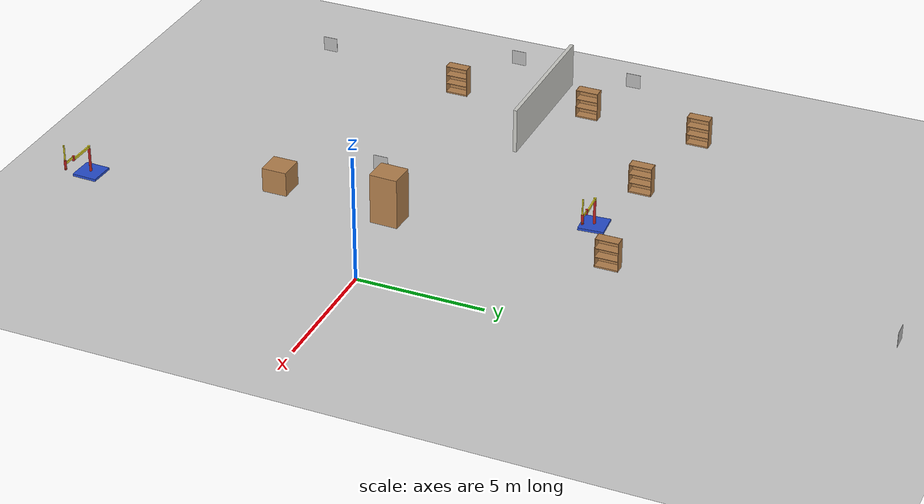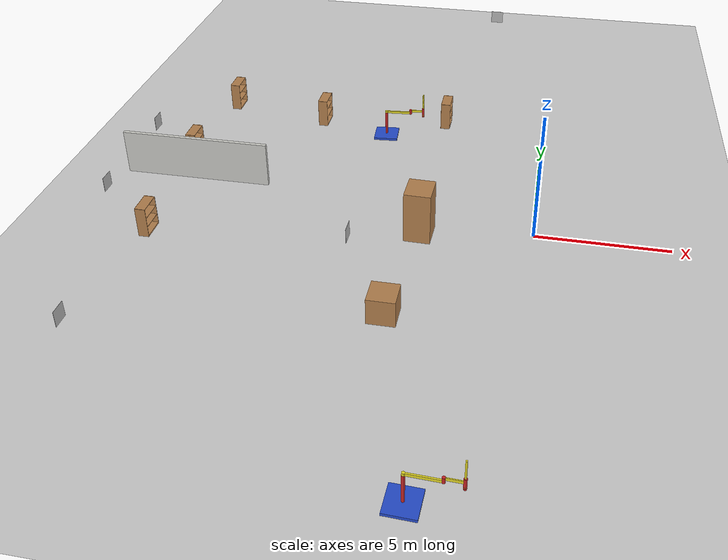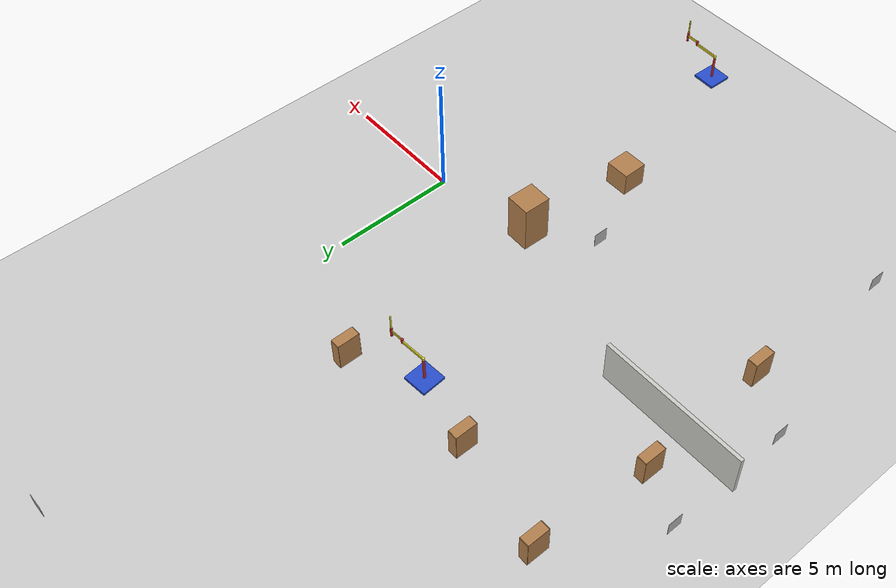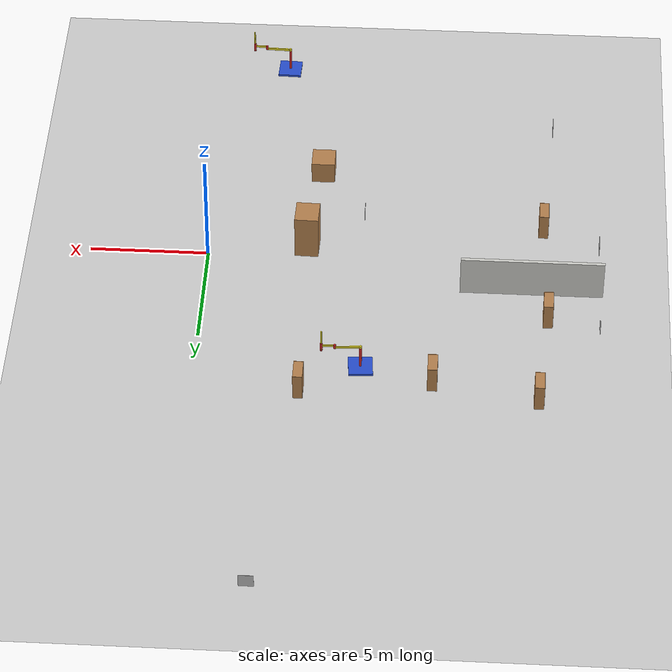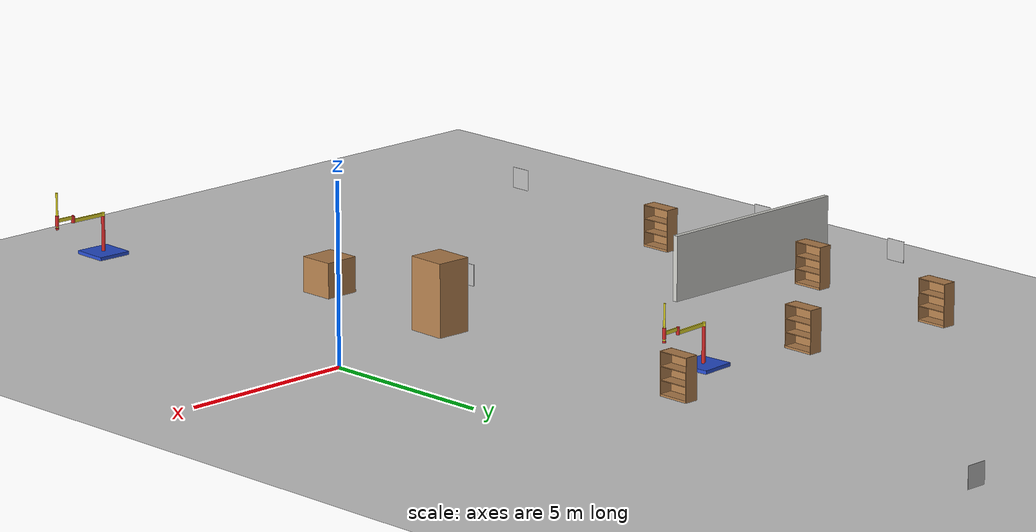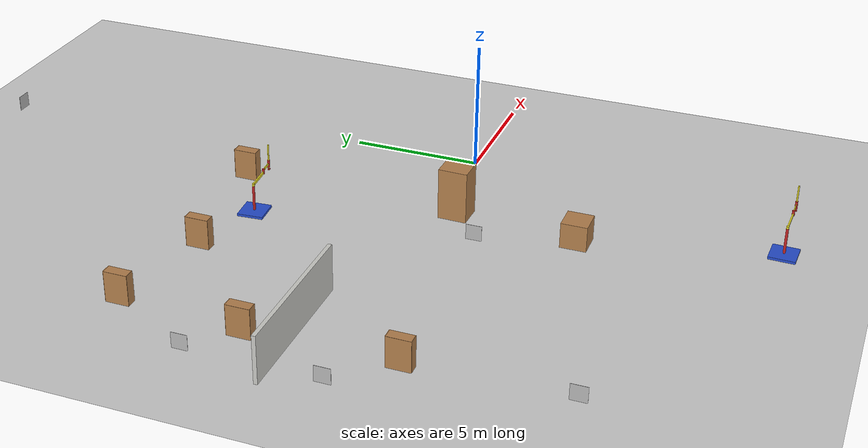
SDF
<sdf version="1.7">
 <world name="default">
  <model name="ground_plane">
   <static>1</static>
   <link name="link">
    <collision name="collision">
     <geometry><plane><normal>0 0 1</normal><size>25 25</size></plane></geometry>
     <surface><friction><ode><mu>100</mu><mu2>50</mu2></ode></friction></surface>
    </collision>
    <visual name="visual">
     <cast_shadows>0</cast_shadows>
     <geometry><plane><normal>0 0 1</normal><size>25 25</size></plane></geometry>
     <material>
      <script><uri>file://media/materials/scripts/gazebo.material</uri><name>Gazebo/Grey</name></script>
     </material>
    </visual>
   </link>
  </model>
  <model name="static_apriltag_1">
   <link name="link">
    <pose>0 0 0 0 1.57 0</pose>
    <inertial>
     <mass>0.39</mass>
     <inertia><ixx>0.00058</ixx><ixy>0</ixy><ixz>0</ixz><iyy>0.00058</iyy><iyz>0</iyz><izz>0.00019</izz></inertia>
    </inertial>
    <collision name="collision"><geometry><box><size>0.6 0.6 0.01</size></box></geometry></collision>
    <visual name="visual">
     <geometry><box><size>0.6 0.6 0.01</size></box></geometry>
     <material>
      <script>
       <uri>model://apriltag/materials/scripts</uri>
       <uri>model://apriltag/materials/textures</uri>
       <name>apriltag/Diffuse1</name>
      </script>
     </material>
    </visual>
    <gravity>0</gravity>
   </link>
   <pose>-3.10037 19.0635 0.801477 0.000796 0.000796 1.57</pose>
   <static>1</static>
   <pose>1.36256 0.459264 0 0 -0 0</pose>
  </model>
  <model name="static_apriltag_2">
   <link name="link">
    <pose>0 0 0 0 1.57 0</pose>
    <inertial>
     <mass>0.39</mass>
     <inertia><ixx>0.00058</ixx><ixy>0</ixy><ixz>0</ixz><iyy>0.00058</iyy><iyz>0</iyz><izz>0.00019</izz></inertia>
    </inertial>
    <collision name="collision"><geometry><box><size>0.6 0.6 0.01</size></box></geometry></collision>
    <visual name="visual">
     <geometry><box><size>0.6 0.6 0.01</size></box></geometry>
     <material>
      <script>
       <uri>model://apriltag/materials/scripts</uri>
       <uri>model://apriltag/materials/textures</uri>
       <name>apriltag/Diffuse2</name>
      </script>
     </material>
    </visual>
    <gravity>0</gravity>
   </link>
   <pose>-16.5929 4.42288 0.800934 -0.000796 0.000796 -1e-06</pose>
   <static>1</static>
   <pose>0.80811 0.829943 0 0 -0 0</pose>
  </model>
  <model name="static_apriltag_3">
   <link name="link">
    <pose>0 0 0 -1.57 1.57 -0</pose>
    <inertial>
     <mass>0.39</mass>
     <inertia><ixx>0.00058</ixx><ixy>0</ixy><ixz>0</ixz><iyy>0.00058</iyy><iyz>0</iyz><izz>0.00019</izz></inertia>
    </inertial>
    <collision name="collision"><geometry><box><size>0.6 0.6 0.01</size></box></geometry></collision>
    <visual name="visual">
     <geometry><box><size>0.6 0.6 0.01</size></box></geometry>
     <material>
      <script>
       <uri>model://apriltag/materials/scripts</uri>
       <uri>model://apriltag/materials/textures</uri>
       <name>apriltag/Diffuse3</name>
      </script>
     </material>
    </visual>
    <gravity>0</gravity>
   </link>
   <pose>-6.58894 -2.10577 0.802405 1e-06 0.001593 1.57319</pose>
   <static>1</static>
   <pose>3.65849 3.02317 0 0 -0 0</pose>
  </model>
  <model name="static_apriltag_6">
   <link name="link">
    <pose>0 0 0 -1.57 1.57 -0</pose>
    <inertial>
     <mass>0.39</mass>
     <inertia><ixx>0.00058</ixx><ixy>0</ixy><ixz>0</ixz><iyy>0.00058</iyy><iyz>0</iyz><izz>0.00019</izz></inertia>
    </inertial>
    <collision name="collision"><geometry><box><size>0.6 0.6 0.01</size></box></geometry></collision>
    <visual name="visual">
     <geometry><box><size>0.6 0.6 0.01</size></box></geometry>
     <material>
      <script>
       <uri>model://apriltag/materials/scripts</uri>
       <uri>model://apriltag/materials/textures</uri>
       <name>apriltag/Diffuse6</name>
      </script>
     </material>
    </visual>
    <gravity>0</gravity>
   </link>
   <pose>-14.5918 -8.15419 0.8 0 0 -1.57</pose>
   <static>1</static>
   <pose>3.43144 4.34187 0 0 -0 0</pose>
  </model>
  <model name="static_apriltag_7">
   <link name="link">
    <pose>0 0 0 0 1.57 0</pose>
    <inertial>
     <mass>0.39</mass>
     <inertia><ixx>0.00058</ixx><ixy>0</ixy><ixz>0</ixz><iyy>0.00058</iyy><iyz>0</iyz><izz>0.00019</izz></inertia>
    </inertial>
    <collision name="collision"><geometry><box><size>0.6 0.6 0.01</size></box></geometry></collision>
    <visual name="visual">
     <geometry><box><size>0.6 0.6 0.01</size></box></geometry>
     <material>
      <script>
       <uri>model://apriltag/materials/scripts</uri>
       <uri>model://apriltag/materials/textures</uri>
       <name>apriltag/Diffuse7</name>
      </script>
     </material>
    </visual>
    <gravity>0</gravity>
   </link>
   <pose>-16.5926 -0.548605 0.801141 -0.000796 0.000796 -1e-06</pose>
   <static>1</static>
   <pose>3.12393 4.47604 0 0 -0 0</pose>
  </model>
  <model name="bookshelf_clone">
   <static>1</static>
   <link name="link">
    <inertial><mass>1</mass></inertial>
    <collision name="back">
     <pose>0 0.005 0.6 0 -0 0</pose>
     <geometry><box><size>0.9 0.01 1.2</size></box></geometry>
    </collision>
    <visual name="visual1">
     <pose>0 0.005 0.6 0 -0 0</pose>
     <geometry><box><size>0.9 0.01 1.2</size></box></geometry>
     <material>
      <script><uri>file://media/materials/scripts/gazebo.material</uri><name>Gazebo/Wood</name></script>
     </material>
    </visual>
    <collision name="left_side">
     <pose>0.45 -0.195 0.6 0 -0 0</pose>
     <geometry><box><size>0.02 0.4 1.2</size></box></geometry>
    </collision>
    <visual name="visual2">
     <pose>0.45 -0.195 0.6 0 -0 0</pose>
     <geometry><box><size>0.02 0.4 1.2</size></box></geometry>
     <material>
      <script><uri>file://media/materials/scripts/gazebo.material</uri><name>Gazebo/Wood</name></script>
     </material>
    </visual>
    <collision name="right_side">
     <pose>-0.45 -0.195 0.6 0 -0 0</pose>
     <geometry><box><size>0.02 0.4 1.2</size></box></geometry>
    </collision>
    <visual name="visual3">
     <pose>-0.45 -0.195 0.6 0 -0 0</pose>
     <geometry><box><size>0.02 0.4 1.2</size></box></geometry>
     <material>
      <script><uri>file://media/materials/scripts/gazebo.material</uri><name>Gazebo/Wood</name></script>
     </material>
    </visual>
    <collision name="bottom">
     <pose>0 -0.195 0.03 0 -0 0</pose>
     <geometry><box><size>0.88 0.4 0.06</size></box></geometry>
    </collision>
    <visual name="visual4">
     <pose>0 -0.195 0.03 0 -0 0</pose>
     <geometry><box><size>0.88 0.4 0.06</size></box></geometry>
     <material>
      <script><uri>file://media/materials/scripts/gazebo.material</uri><name>Gazebo/Wood</name></script>
     </material>
    </visual>
    <collision name="top">
     <pose>0 -0.195 1.19 0 -0 0</pose>
     <geometry><box><size>0.88 0.4 0.02</size></box></geometry>
    </collision>
    <visual name="visual5">
     <pose>0 -0.195 1.19 0 -0 0</pose>
     <geometry><box><size>0.88 0.4 0.02</size></box></geometry>
     <material>
      <script><uri>file://media/materials/scripts/gazebo.material</uri><name>Gazebo/Wood</name></script>
     </material>
    </visual>
    <collision name="low_shelf">
     <pose>0 -0.195 0.43 0 -0 0</pose>
     <geometry><box><size>0.88 0.4 0.02</size></box></geometry>
    </collision>
    <visual name="visual6">
     <pose>0 -0.195 0.43 0 -0 0</pose>
     <geometry><box><size>0.88 0.4 0.02</size></box></geometry>
     <material>
      <script><uri>file://media/materials/scripts/gazebo.material</uri><name>Gazebo/Wood</name></script>
     </material>
    </visual>
    <collision name="high_shelf">
     <pose>0 -0.195 0.8 0 -0 0</pose>
     <geometry><box><size>0.88 0.4 0.02</size></box></geometry>
    </collision>
    <visual name="visual7">
     <pose>0 -0.195 0.8 0 -0 0</pose>
     <geometry><box><size>0.88 0.4 0.02</size></box></geometry>
     <material>
      <script><uri>file://media/materials/scripts/gazebo.material</uri><name>Gazebo/Wood</name></script>
     </material>
    </visual>
   </link>
   <pose>-14.4391 -2.23541 0 0 -0 1.57</pose>
  </model>
  <model name="simple_arm_clone">
   <link name="arm_base">
    <inertial>
     <pose>0 0 0.00099 0 -0 0</pose>
     <inertia><ixx>1.11</ixx><ixy>0</ixy><ixz>0</ixz><iyy>100.11</iyy><iyz>0</iyz><izz>1.01</izz></inertia>
     <mass>101</mass>
    </inertial>
    <collision name="arm_base_geom">
     <pose>0 0 0.05 0 -0 0</pose>
     <geometry><box><size>1 1 0.1</size></box></geometry>
    </collision>
    <visual name="arm_base_geom_visual">
     <pose>0 0 0.05 0 -0 0</pose>
     <geometry><box><size>1 1 0.1</size></box></geometry>
     <material>
      <script><uri>file://media/materials/scripts/gazebo.material</uri><name>Gazebo/Blue</name></script>
     </material>
    </visual>
    <collision name="arm_base_geom_arm_trunk">
     <pose>0 0 0.6 0 -0 0</pose>
     <geometry><cylinder><radius>0.05</radius><length>1</length></cylinder></geometry>
    </collision>
    <visual name="arm_base_geom_arm_trunk_visual">
     <pose>0 0 0.6 0 -0 0</pose>
     <geometry><cylinder><radius>0.05</radius><length>1</length></cylinder></geometry>
     <material>
      <script><uri>file://media/materials/scripts/gazebo.material</uri><name>Gazebo/Red</name></script>
     </material>
    </visual>
   </link>
   <link name="arm_shoulder_pan">
    <pose>0 0 1.1 0 -0 0</pose>
    <inertial>
     <pose>0.045455 0 0 0 -0 0</pose>
     <inertia><ixx>0.011</ixx><ixy>0</ixy><ixz>0</ixz><iyy>0.0225</iyy><iyz>0</iyz><izz>0.0135</izz></inertia>
     <mass>1.1</mass>
    </inertial>
    <collision name="arm_shoulder_pan_geom">
     <pose>0 0 0.05 0 -0 0</pose>
     <geometry><cylinder><radius>0.05</radius><length>0.1</length></cylinder></geometry>
    </collision>
    <visual name="arm_shoulder_pan_geom_visual">
     <pose>0 0 0.05 0 -0 0</pose>
     <geometry><cylinder><radius>0.05</radius><length>0.1</length></cylinder></geometry>
     <material>
      <script><uri>file://media/materials/scripts/gazebo.material</uri><name>Gazebo/Yellow</name></script>
     </material>
    </visual>
    <collision name="arm_shoulder_pan_geom_arm_shoulder">
     <pose>0.55 0 0.05 0 -0 0</pose>
     <geometry><box><size>1 0.05 0.1</size></box></geometry>
    </collision>
    <visual name="arm_shoulder_pan_geom_arm_shoulder_visual">
     <pose>0.55 0 0.05 0 -0 0</pose>
     <geometry><box><size>1 0.05 0.1</size></box></geometry>
     <material>
      <script><uri>file://media/materials/scripts/gazebo.material</uri><name>Gazebo/Yellow</name></script>
     </material>
    </visual>
   </link>
   <link name="arm_elbow_pan">
    <pose>1.05 0 1.1 0 -0 0</pose>
    <inertial>
     <pose>0.0875 0 0.083333 0 -0 0</pose>
     <inertia>
      <ixx>0.031</ixx>
      <ixy>0</ixy>
      <ixz>0.005</ixz>
      <iyy>0.07275</iyy>
      <iyz>0</iyz>
      <izz>0.04475</izz>
     </inertia>
     <mass>1.2</mass>
    </inertial>
    <collision name="arm_elbow_pan_geom">
     <pose>0 0 0.1 0 -0 0</pose>
     <geometry><cylinder><radius>0.05</radius><length>0.2</length></cylinder></geometry>
    </collision>
    <visual name="arm_elbow_pan_geom_visual">
     <pose>0 0 0.1 0 -0 0</pose>
     <geometry><cylinder><radius>0.05</radius><length>0.2</length></cylinder></geometry>
     <material>
      <script><uri>file://media/materials/scripts/gazebo.material</uri><name>Gazebo/Red</name></script>
     </material>
    </visual>
    <collision name="arm_elbow_pan_geom_arm_elbow">
     <pose>0.3 0 0.15 0 -0 0</pose>
     <geometry><box><size>0.5 0.03 0.1</size></box></geometry>
    </collision>
    <visual name="arm_elbow_pan_geom_arm_elbow_visual">
     <pose>0.3 0 0.15 0 -0 0</pose>
     <geometry><box><size>0.5 0.03 0.1</size></box></geometry>
     <material>
      <script><uri>file://media/materials/scripts/gazebo.material</uri><name>Gazebo/Yellow</name></script>
     </material>
    </visual>
    <collision name="arm_elbow_pan_geom_arm_wrist">
     <pose>0.55 0 0.15 0 -0 0</pose>
     <geometry><cylinder><radius>0.05</radius><length>0.3</length></cylinder></geometry>
    </collision>
    <visual name="arm_elbow_pan_geom_arm_wrist_visual">
     <pose>0.55 0 0.15 0 -0 0</pose>
     <geometry><cylinder><radius>0.05</radius><length>0.3</length></cylinder></geometry>
     <material>
      <script><uri>file://media/materials/scripts/gazebo.material</uri><name>Gazebo/Red</name></script>
     </material>
    </visual>
   </link>
   <link name="arm_wrist_lift">
    <pose>1.6 0 1.05 0 -0 0</pose>
    <inertial>
     <inertia><ixx>0.01</ixx><ixy>0</ixy><ixz>0</ixz><iyy>0.01</iyy><iyz>0</iyz><izz>0.001</izz></inertia>
     <mass>0.1</mass>
    </inertial>
    <collision name="arm_wrist_lift_geom">
     <pose>0 0 0.5 0 -0 0</pose>
     <geometry><cylinder><radius>0.03</radius><length>1</length></cylinder></geometry>
    </collision>
    <visual name="arm_wrist_lift_geom_visual">
     <pose>0 0 0.5 0 -0 0</pose>
     <geometry><cylinder><radius>0.03</radius><length>1</length></cylinder></geometry>
     <material>
      <script><uri>file://media/materials/scripts/gazebo.material</uri><name>Gazebo/Yellow</name></script>
     </material>
    </visual>
   </link>
   <link name="arm_wrist_roll">
    <pose>1.6 0 1 0 -0 0</pose>
    <inertial>
     <inertia><ixx>0.01</ixx><ixy>0</ixy><ixz>0</ixz><iyy>0.01</iyy><iyz>0</iyz><izz>0.001</izz></inertia>
     <mass>0.1</mass>
    </inertial>
    <collision name="arm_wrist_roll_geom">
     <pose>0 0 0.025 0 -0 0</pose>
     <geometry><cylinder><radius>0.05</radius><length>0.05</length></cylinder></geometry>
    </collision>
    <visual name="arm_wrist_roll_geom_visual">
     <pose>0 0 0.025 0 -0 0</pose>
     <geometry><cylinder><radius>0.05</radius><length>0.05</length></cylinder></geometry>
     <material>
      <script><uri>file://media/materials/scripts/gazebo.material</uri><name>Gazebo/Red</name></script>
     </material>
    </visual>
   </link>
   <joint name="arm_shoulder_pan_joint" type="revolute">
    <parent>arm_base</parent>
    <child>arm_shoulder_pan</child>
    <axis>
     <dynamics>
      <damping>1</damping>
      <friction>0</friction>
      <spring_reference>0</spring_reference>
      <spring_stiffness>0</spring_stiffness>
     </dynamics>
     <xyz expressed_in="__model__">0 0 1</xyz>
     <limit><lower>-1e+16</lower><upper>1e+16</upper></limit>
    </axis>
   </joint>
   <joint name="arm_elbow_pan_joint" type="revolute">
    <parent>arm_shoulder_pan</parent>
    <child>arm_elbow_pan</child>
    <axis>
     <dynamics>
      <damping>1</damping>
      <friction>0</friction>
      <spring_reference>0</spring_reference>
      <spring_stiffness>0</spring_stiffness>
     </dynamics>
     <xyz expressed_in="__model__">0 0 1</xyz>
     <limit><lower>-1e+16</lower><upper>1e+16</upper></limit>
    </axis>
   </joint>
   <joint name="arm_wrist_lift_joint" type="prismatic">
    <parent>arm_elbow_pan</parent>
    <child>arm_wrist_lift</child>
    <axis>
     <dynamics>
      <damping>1</damping>
      <friction>0</friction>
      <spring_reference>0</spring_reference>
      <spring_stiffness>0</spring_stiffness>
     </dynamics>
     <limit><lower>-0.8</lower><upper>0.1</upper></limit>
     <xyz expressed_in="__model__">0 0 1</xyz>
    </axis>
   </joint>
   <joint name="arm_wrist_roll_joint" type="revolute">
    <parent>arm_wrist_lift</parent>
    <child>arm_wrist_roll</child>
    <axis>
     <dynamics>
      <damping>1</damping>
      <friction>0</friction>
      <spring_reference>0</spring_reference>
      <spring_stiffness>0</spring_stiffness>
     </dynamics>
     <limit><lower>-2.99999</lower><upper>2.99999</upper></limit>
     <xyz expressed_in="__model__">0 0 1</xyz>
    </axis>
   </joint>
   <pose>-6.82307 6.51407 -5.4e-05 -0.00011 -1e-06 0.075516</pose>
  </model>
  <model name="simple_arm_clone_0">
   <link name="arm_base">
    <inertial>
     <pose>0 0 0.00099 0 -0 0</pose>
     <inertia><ixx>1.11</ixx><ixy>0</ixy><ixz>0</ixz><iyy>100.11</iyy><iyz>0</iyz><izz>1.01</izz></inertia>
     <mass>101</mass>
    </inertial>
    <collision name="arm_base_geom">
     <pose>0 0 0.05 0 -0 0</pose>
     <geometry><box><size>1 1 0.1</size></box></geometry>
    </collision>
    <visual name="arm_base_geom_visual">
     <pose>0 0 0.05 0 -0 0</pose>
     <geometry><box><size>1 1 0.1</size></box></geometry>
     <material>
      <script><uri>file://media/materials/scripts/gazebo.material</uri><name>Gazebo/Blue</name></script>
     </material>
    </visual>
    <collision name="arm_base_geom_arm_trunk">
     <pose>0 0 0.6 0 -0 0</pose>
     <geometry><cylinder><radius>0.05</radius><length>1</length></cylinder></geometry>
    </collision>
    <visual name="arm_base_geom_arm_trunk_visual">
     <pose>0 0 0.6 0 -0 0</pose>
     <geometry><cylinder><radius>0.05</radius><length>1</length></cylinder></geometry>
     <material>
      <script><uri>file://media/materials/scripts/gazebo.material</uri><name>Gazebo/Red</name></script>
     </material>
    </visual>
   </link>
   <link name="arm_shoulder_pan">
    <pose>0 0 1.1 0 -0 0</pose>
    <inertial>
     <pose>0.045455 0 0 0 -0 0</pose>
     <inertia><ixx>0.011</ixx><ixy>0</ixy><ixz>0</ixz><iyy>0.0225</iyy><iyz>0</iyz><izz>0.0135</izz></inertia>
     <mass>1.1</mass>
    </inertial>
    <collision name="arm_shoulder_pan_geom">
     <pose>0 0 0.05 0 -0 0</pose>
     <geometry><cylinder><radius>0.05</radius><length>0.1</length></cylinder></geometry>
    </collision>
    <visual name="arm_shoulder_pan_geom_visual">
     <pose>0 0 0.05 0 -0 0</pose>
     <geometry><cylinder><radius>0.05</radius><length>0.1</length></cylinder></geometry>
     <material>
      <script><uri>file://media/materials/scripts/gazebo.material</uri><name>Gazebo/Yellow</name></script>
     </material>
    </visual>
    <collision name="arm_shoulder_pan_geom_arm_shoulder">
     <pose>0.55 0 0.05 0 -0 0</pose>
     <geometry><box><size>1 0.05 0.1</size></box></geometry>
    </collision>
    <visual name="arm_shoulder_pan_geom_arm_shoulder_visual">
     <pose>0.55 0 0.05 0 -0 0</pose>
     <geometry><box><size>1 0.05 0.1</size></box></geometry>
     <material>
      <script><uri>file://media/materials/scripts/gazebo.material</uri><name>Gazebo/Yellow</name></script>
     </material>
    </visual>
   </link>
   <link name="arm_elbow_pan">
    <pose>1.05 0 1.1 0 -0 0</pose>
    <inertial>
     <pose>0.0875 0 0.083333 0 -0 0</pose>
     <inertia>
      <ixx>0.031</ixx>
      <ixy>0</ixy>
      <ixz>0.005</ixz>
      <iyy>0.07275</iyy>
      <iyz>0</iyz>
      <izz>0.04475</izz>
     </inertia>
     <mass>1.2</mass>
    </inertial>
    <collision name="arm_elbow_pan_geom">
     <pose>0 0 0.1 0 -0 0</pose>
     <geometry><cylinder><radius>0.05</radius><length>0.2</length></cylinder></geometry>
    </collision>
    <visual name="arm_elbow_pan_geom_visual">
     <pose>0 0 0.1 0 -0 0</pose>
     <geometry><cylinder><radius>0.05</radius><length>0.2</length></cylinder></geometry>
     <material>
      <script><uri>file://media/materials/scripts/gazebo.material</uri><name>Gazebo/Red</name></script>
     </material>
    </visual>
    <collision name="arm_elbow_pan_geom_arm_elbow">
     <pose>0.3 0 0.15 0 -0 0</pose>
     <geometry><box><size>0.5 0.03 0.1</size></box></geometry>
    </collision>
    <visual name="arm_elbow_pan_geom_arm_elbow_visual">
     <pose>0.3 0 0.15 0 -0 0</pose>
     <geometry><box><size>0.5 0.03 0.1</size></box></geometry>
     <material>
      <script><uri>file://media/materials/scripts/gazebo.material</uri><name>Gazebo/Yellow</name></script>
     </material>
    </visual>
    <collision name="arm_elbow_pan_geom_arm_wrist">
     <pose>0.55 0 0.15 0 -0 0</pose>
     <geometry><cylinder><radius>0.05</radius><length>0.3</length></cylinder></geometry>
    </collision>
    <visual name="arm_elbow_pan_geom_arm_wrist_visual">
     <pose>0.55 0 0.15 0 -0 0</pose>
     <geometry><cylinder><radius>0.05</radius><length>0.3</length></cylinder></geometry>
     <material>
      <script><uri>file://media/materials/scripts/gazebo.material</uri><name>Gazebo/Red</name></script>
     </material>
    </visual>
   </link>
   <link name="arm_wrist_lift">
    <pose>1.6 0 1.05 0 -0 0</pose>
    <inertial>
     <inertia><ixx>0.01</ixx><ixy>0</ixy><ixz>0</ixz><iyy>0.01</iyy><iyz>0</iyz><izz>0.001</izz></inertia>
     <mass>0.1</mass>
    </inertial>
    <collision name="arm_wrist_lift_geom">
     <pose>0 0 0.5 0 -0 0</pose>
     <geometry><cylinder><radius>0.03</radius><length>1</length></cylinder></geometry>
    </collision>
    <visual name="arm_wrist_lift_geom_visual">
     <pose>0 0 0.5 0 -0 0</pose>
     <geometry><cylinder><radius>0.03</radius><length>1</length></cylinder></geometry>
     <material>
      <script><uri>file://media/materials/scripts/gazebo.material</uri><name>Gazebo/Yellow</name></script>
     </material>
    </visual>
   </link>
   <link name="arm_wrist_roll">
    <pose>1.6 0 1 0 -0 0</pose>
    <inertial>
     <inertia><ixx>0.01</ixx><ixy>0</ixy><ixz>0</ixz><iyy>0.01</iyy><iyz>0</iyz><izz>0.001</izz></inertia>
     <mass>0.1</mass>
    </inertial>
    <collision name="arm_wrist_roll_geom">
     <pose>0 0 0.025 0 -0 0</pose>
     <geometry><cylinder><radius>0.05</radius><length>0.05</length></cylinder></geometry>
    </collision>
    <visual name="arm_wrist_roll_geom_visual">
     <pose>0 0 0.025 0 -0 0</pose>
     <geometry><cylinder><radius>0.05</radius><length>0.05</length></cylinder></geometry>
     <material>
      <script><uri>file://media/materials/scripts/gazebo.material</uri><name>Gazebo/Red</name></script>
     </material>
    </visual>
   </link>
   <joint name="arm_shoulder_pan_joint" type="revolute">
    <parent>arm_base</parent>
    <child>arm_shoulder_pan</child>
    <axis>
     <dynamics>
      <damping>1</damping>
      <friction>0</friction>
      <spring_reference>0</spring_reference>
      <spring_stiffness>0</spring_stiffness>
     </dynamics>
     <xyz expressed_in="__model__">0 0 1</xyz>
     <limit><lower>-1e+16</lower><upper>1e+16</upper></limit>
    </axis>
   </joint>
   <joint name="arm_elbow_pan_joint" type="revolute">
    <parent>arm_shoulder_pan</parent>
    <child>arm_elbow_pan</child>
    <axis>
     <dynamics>
      <damping>1</damping>
      <friction>0</friction>
      <spring_reference>0</spring_reference>
      <spring_stiffness>0</spring_stiffness>
     </dynamics>
     <xyz expressed_in="__model__">0 0 1</xyz>
     <limit><lower>-1e+16</lower><upper>1e+16</upper></limit>
    </axis>
   </joint>
   <joint name="arm_wrist_lift_joint" type="prismatic">
    <parent>arm_elbow_pan</parent>
    <child>arm_wrist_lift</child>
    <axis>
     <dynamics>
      <damping>1</damping>
      <friction>0</friction>
      <spring_reference>0</spring_reference>
      <spring_stiffness>0</spring_stiffness>
     </dynamics>
     <limit><lower>-0.8</lower><upper>0.1</upper></limit>
     <xyz expressed_in="__model__">0 0 1</xyz>
    </axis>
   </joint>
   <joint name="arm_wrist_roll_joint" type="revolute">
    <parent>arm_wrist_lift</parent>
    <child>arm_wrist_roll</child>
    <axis>
     <dynamics>
      <damping>1</damping>
      <friction>0</friction>
      <spring_reference>0</spring_reference>
      <spring_stiffness>0</spring_stiffness>
     </dynamics>
     <limit><lower>-2.99999</lower><upper>2.99999</upper></limit>
     <xyz expressed_in="__model__">0 0 1</xyz>
    </axis>
   </joint>
   <pose>-2.69365 -12.5723 -5.5e-05 0.000113 -2e-06 -0.036275</pose>
  </model>
  <model name="0810_MAP2_elment2">
   <link name="Wall_0">
    <inertial>
     <mass>1</mass>
     <inertia><ixx>1</ixx><ixy>0</ixy><ixz>0</ixz><iyy>1</iyy><iyz>0</iyz><izz>1</izz></inertia>
    </inertial>
    <visual name="Wall_0_Visual_3">
     <pose>-1 0 0.9 0 -0 0</pose>
     <geometry><box><size>6 0.15 2</size></box></geometry>
     <material>
      <script><uri>file://media/materials/scripts/gazebo.material</uri><name>Gazebo/CeilingTiled</name></script>
      <ambient>1 0.765 0.306 1</ambient>
      <shader type="pixel"><normal_map>__default__</normal_map></shader>
      <diffuse>1 1 1 1</diffuse>
      <specular>0 0 0 1</specular>
      <emissive>0 0 0 1</emissive>
     </material>
     <meta><layer>0</layer></meta>
    </visual>
    <collision name="Wall_0_Collision_3">
     <pose>-1 0 0.9 0 -0 0</pose>
     <geometry><box><size>6 0.15 2</size></box></geometry>
     <surface>
      <friction>
       <ode><mu>1</mu><mu2>1</mu2><fdir1>0 0 0</fdir1><slip1>0</slip1><slip2>0</slip2></ode>
       <torsional>
        <coefficient>1</coefficient>
        <patch_radius>0</patch_radius>
        <surface_radius>0</surface_radius>
        <use_patch_radius>1</use_patch_radius>
        <ode><slip>0</slip></ode>
       </torsional>
      </friction>
      <bounce><restitution_coefficient>0</restitution_coefficient><threshold>1e+06</threshold></bounce>
      <contact>
       <collide_without_contact>0</collide_without_contact>
       <collide_without_contact_bitmask>1</collide_without_contact_bitmask>
       <collide_bitmask>1</collide_bitmask>
       <ode>
        <soft_cfm>0</soft_cfm>
        <soft_erp>0.2</soft_erp>
        <kp>1e+13</kp>
        <kd>1</kd>
        <max_vel>0.01</max_vel>
        <min_depth>0</min_depth>
       </ode>
       <bullet>
        <split_impulse>1</split_impulse>
        <split_impulse_penetration_threshold>-0.01</split_impulse_penetration_threshold>
        <soft_cfm>0</soft_cfm>
        <soft_erp>0.2</soft_erp>
        <kp>1e+13</kp>
        <kd>1</kd>
       </bullet>
      </contact>
     </surface>
    </collision>
   </link>
   <static>1</static>
   <pose>-12.7621 1.68189 -0.102799 0 -0 0</pose>
  </model>
  <model name="bookshelf_clone_0_clone_clone">
   <static>1</static>
   <link name="link">
    <inertial><mass>1</mass></inertial>
    <collision name="back">
     <pose>0 0.005 0.6 0 -0 0</pose>
     <geometry><box><size>0.9 0.01 1.2</size></box></geometry>
    </collision>
    <visual name="visual1">
     <pose>0 0.005 0.6 0 -0 0</pose>
     <geometry><box><size>0.9 0.01 1.2</size></box></geometry>
     <material>
      <script><uri>file://media/materials/scripts/gazebo.material</uri><name>Gazebo/Wood</name></script>
     </material>
    </visual>
    <collision name="left_side">
     <pose>0.45 -0.195 0.6 0 -0 0</pose>
     <geometry><box><size>0.02 0.4 1.2</size></box></geometry>
    </collision>
    <visual name="visual2">
     <pose>0.45 -0.195 0.6 0 -0 0</pose>
     <geometry><box><size>0.02 0.4 1.2</size></box></geometry>
     <material>
      <script><uri>file://media/materials/scripts/gazebo.material</uri><name>Gazebo/Wood</name></script>
     </material>
    </visual>
    <collision name="right_side">
     <pose>-0.45 -0.195 0.6 0 -0 0</pose>
     <geometry><box><size>0.02 0.4 1.2</size></box></geometry>
    </collision>
    <visual name="visual3">
     <pose>-0.45 -0.195 0.6 0 -0 0</pose>
     <geometry><box><size>0.02 0.4 1.2</size></box></geometry>
     <material>
      <script><uri>file://media/materials/scripts/gazebo.material</uri><name>Gazebo/Wood</name></script>
     </material>
    </visual>
    <collision name="bottom">
     <pose>0 -0.195 0.03 0 -0 0</pose>
     <geometry><box><size>0.88 0.4 0.06</size></box></geometry>
    </collision>
    <visual name="visual4">
     <pose>0 -0.195 0.03 0 -0 0</pose>
     <geometry><box><size>0.88 0.4 0.06</size></box></geometry>
     <material>
      <script><uri>file://media/materials/scripts/gazebo.material</uri><name>Gazebo/Wood</name></script>
     </material>
    </visual>
    <collision name="top">
     <pose>0 -0.195 1.19 0 -0 0</pose>
     <geometry><box><size>0.88 0.4 0.02</size></box></geometry>
    </collision>
    <visual name="visual5">
     <pose>0 -0.195 1.19 0 -0 0</pose>
     <geometry><box><size>0.88 0.4 0.02</size></box></geometry>
     <material>
      <script><uri>file://media/materials/scripts/gazebo.material</uri><name>Gazebo/Wood</name></script>
     </material>
    </visual>
    <collision name="low_shelf">
     <pose>0 -0.195 0.43 0 -0 0</pose>
     <geometry><box><size>0.88 0.4 0.02</size></box></geometry>
    </collision>
    <visual name="visual6">
     <pose>0 -0.195 0.43 0 -0 0</pose>
     <geometry><box><size>0.88 0.4 0.02</size></box></geometry>
     <material>
      <script><uri>file://media/materials/scripts/gazebo.material</uri><name>Gazebo/Wood</name></script>
     </material>
    </visual>
    <collision name="high_shelf">
     <pose>0 -0.195 0.8 0 -0 0</pose>
     <geometry><box><size>0.88 0.4 0.02</size></box></geometry>
    </collision>
    <visual name="visual7">
     <pose>0 -0.195 0.8 0 -0 0</pose>
     <geometry><box><size>0.88 0.4 0.02</size></box></geometry>
     <material>
      <script><uri>file://media/materials/scripts/gazebo.material</uri><name>Gazebo/Wood</name></script>
     </material>
    </visual>
   </link>
   <pose>-14.3363 8.06775 0 0 -0 1.57</pose>
  </model>
  <model name="bookshelf_clone_0_clone_clone_clone">
   <static>1</static>
   <link name="link">
    <inertial><mass>1</mass></inertial>
    <collision name="back">
     <pose>0 0.005 0.6 0 -0 0</pose>
     <geometry><box><size>0.9 0.01 1.2</size></box></geometry>
    </collision>
    <visual name="visual1">
     <pose>0 0.005 0.6 0 -0 0</pose>
     <geometry><box><size>0.9 0.01 1.2</size></box></geometry>
     <material>
      <script><uri>file://media/materials/scripts/gazebo.material</uri><name>Gazebo/Wood</name></script>
     </material>
    </visual>
    <collision name="left_side">
     <pose>0.45 -0.195 0.6 0 -0 0</pose>
     <geometry><box><size>0.02 0.4 1.2</size></box></geometry>
    </collision>
    <visual name="visual2">
     <pose>0.45 -0.195 0.6 0 -0 0</pose>
     <geometry><box><size>0.02 0.4 1.2</size></box></geometry>
     <material>
      <script><uri>file://media/materials/scripts/gazebo.material</uri><name>Gazebo/Wood</name></script>
     </material>
    </visual>
    <collision name="right_side">
     <pose>-0.45 -0.195 0.6 0 -0 0</pose>
     <geometry><box><size>0.02 0.4 1.2</size></box></geometry>
    </collision>
    <visual name="visual3">
     <pose>-0.45 -0.195 0.6 0 -0 0</pose>
     <geometry><box><size>0.02 0.4 1.2</size></box></geometry>
     <material>
      <script><uri>file://media/materials/scripts/gazebo.material</uri><name>Gazebo/Wood</name></script>
     </material>
    </visual>
    <collision name="bottom">
     <pose>0 -0.195 0.03 0 -0 0</pose>
     <geometry><box><size>0.88 0.4 0.06</size></box></geometry>
    </collision>
    <visual name="visual4">
     <pose>0 -0.195 0.03 0 -0 0</pose>
     <geometry><box><size>0.88 0.4 0.06</size></box></geometry>
     <material>
      <script><uri>file://media/materials/scripts/gazebo.material</uri><name>Gazebo/Wood</name></script>
     </material>
    </visual>
    <collision name="top">
     <pose>0 -0.195 1.19 0 -0 0</pose>
     <geometry><box><size>0.88 0.4 0.02</size></box></geometry>
    </collision>
    <visual name="visual5">
     <pose>0 -0.195 1.19 0 -0 0</pose>
     <geometry><box><size>0.88 0.4 0.02</size></box></geometry>
     <material>
      <script><uri>file://media/materials/scripts/gazebo.material</uri><name>Gazebo/Wood</name></script>
     </material>
    </visual>
    <collision name="low_shelf">
     <pose>0 -0.195 0.43 0 -0 0</pose>
     <geometry><box><size>0.88 0.4 0.02</size></box></geometry>
    </collision>
    <visual name="visual6">
     <pose>0 -0.195 0.43 0 -0 0</pose>
     <geometry><box><size>0.88 0.4 0.02</size></box></geometry>
     <material>
      <script><uri>file://media/materials/scripts/gazebo.material</uri><name>Gazebo/Wood</name></script>
     </material>
    </visual>
    <collision name="high_shelf">
     <pose>0 -0.195 0.8 0 -0 0</pose>
     <geometry><box><size>0.88 0.4 0.02</size></box></geometry>
    </collision>
    <visual name="visual7">
     <pose>0 -0.195 0.8 0 -0 0</pose>
     <geometry><box><size>0.88 0.4 0.02</size></box></geometry>
     <material>
      <script><uri>file://media/materials/scripts/gazebo.material</uri><name>Gazebo/Wood</name></script>
     </material>
    </visual>
   </link>
   <pose>-14.6594 3.31377 0 0 -0 1.57</pose>
  </model>
  <model name="unit_box_clone">
   <pose>-4.21047 -0.637018 1.01795 -1e-06 -1e-06 -0.027434</pose>
   <link name="link">
    <inertial>
     <mass>1</mass>
     <inertia>
      <ixx>0.166667</ixx>
      <ixy>0</ixy>
      <ixz>0</ixz>
      <iyy>0.166667</iyy>
      <iyz>0</iyz>
      <izz>0.166667</izz>
     </inertia>
    </inertial>
    <collision name="collision"><geometry><box><size>1 1.11313 2.03591</size></box></geometry></collision>
    <visual name="visual">
     <geometry><box><size>1 1.11313 2.03591</size></box></geometry>
     <material>
      <script><uri>file://media/materials/scripts/gazebo.material</uri><name>Gazebo/Wood</name></script>
     </material>
    </visual>
   </link>
   <static>0</static>
  </model>
  <model name="unit_box_0_clone_1">
   <pose>-4.6279 -5.40513 0.499995 0 -1e-05 0.000195</pose>
   <link name="link">
    <inertial>
     <mass>1</mass>
     <inertia>
      <ixx>0.166667</ixx>
      <ixy>0</ixy>
      <ixz>0</ixz>
      <iyy>0.166667</iyy>
      <iyz>0</iyz>
      <izz>0.166667</izz>
     </inertia>
    </inertial>
    <collision name="collision"><geometry><box><size>0.999998 0.999998 1</size></box></geometry></collision>
    <visual name="visual">
     <geometry><box><size>0.999998 0.999998 1</size></box></geometry>
     <material>
      <script><uri>file://media/materials/scripts/gazebo.material</uri><name>Gazebo/Wood</name></script>
     </material>
    </visual>
   </link>
   <static>0</static>
  </model>
  <model name="bookshelf_clone_0_clone_clone_clone_clone">
   <static>1</static>
   <link name="link">
    <inertial><mass>1</mass></inertial>
    <collision name="back">
     <pose>0 0.005 0.6 0 -0 0</pose>
     <geometry><box><size>0.9 0.01 1.2</size></box></geometry>
    </collision>
    <visual name="visual1">
     <pose>0 0.005 0.6 0 -0 0</pose>
     <geometry><box><size>0.9 0.01 1.2</size></box></geometry>
     <material>
      <script><uri>file://media/materials/scripts/gazebo.material</uri><name>Gazebo/Wood</name></script>
     </material>
    </visual>
    <collision name="left_side">
     <pose>0.45 -0.195 0.6 0 -0 0</pose>
     <geometry><box><size>0.02 0.4 1.2</size></box></geometry>
    </collision>
    <visual name="visual2">
     <pose>0.45 -0.195 0.6 0 -0 0</pose>
     <geometry><box><size>0.02 0.4 1.2</size></box></geometry>
     <material>
      <script><uri>file://media/materials/scripts/gazebo.material</uri><name>Gazebo/Wood</name></script>
     </material>
    </visual>
    <collision name="right_side">
     <pose>-0.45 -0.195 0.6 0 -0 0</pose>
     <geometry><box><size>0.02 0.4 1.2</size></box></geometry>
    </collision>
    <visual name="visual3">
     <pose>-0.45 -0.195 0.6 0 -0 0</pose>
     <geometry><box><size>0.02 0.4 1.2</size></box></geometry>
     <material>
      <script><uri>file://media/materials/scripts/gazebo.material</uri><name>Gazebo/Wood</name></script>
     </material>
    </visual>
    <collision name="bottom">
     <pose>0 -0.195 0.03 0 -0 0</pose>
     <geometry><box><size>0.88 0.4 0.06</size></box></geometry>
    </collision>
    <visual name="visual4">
     <pose>0 -0.195 0.03 0 -0 0</pose>
     <geometry><box><size>0.88 0.4 0.06</size></box></geometry>
     <material>
      <script><uri>file://media/materials/scripts/gazebo.material</uri><name>Gazebo/Wood</name></script>
     </material>
    </visual>
    <collision name="top">
     <pose>0 -0.195 1.19 0 -0 0</pose>
     <geometry><box><size>0.88 0.4 0.02</size></box></geometry>
    </collision>
    <visual name="visual5">
     <pose>0 -0.195 1.19 0 -0 0</pose>
     <geometry><box><size>0.88 0.4 0.02</size></box></geometry>
     <material>
      <script><uri>file://media/materials/scripts/gazebo.material</uri><name>Gazebo/Wood</name></script>
     </material>
    </visual>
    <collision name="low_shelf">
     <pose>0 -0.195 0.43 0 -0 0</pose>
     <geometry><box><size>0.88 0.4 0.02</size></box></geometry>
    </collision>
    <visual name="visual6">
     <pose>0 -0.195 0.43 0 -0 0</pose>
     <geometry><box><size>0.88 0.4 0.02</size></box></geometry>
     <material>
      <script><uri>file://media/materials/scripts/gazebo.material</uri><name>Gazebo/Wood</name></script>
     </material>
    </visual>
    <collision name="high_shelf">
     <pose>0 -0.195 0.8 0 -0 0</pose>
     <geometry><box><size>0.88 0.4 0.02</size></box></geometry>
    </collision>
    <visual name="visual7">
     <pose>0 -0.195 0.8 0 -0 0</pose>
     <geometry><box><size>0.88 0.4 0.02</size></box></geometry>
     <material>
      <script><uri>file://media/materials/scripts/gazebo.material</uri><name>Gazebo/Wood</name></script>
     </material>
    </visual>
   </link>
   <pose>-9.9842 7.27199 0 0 -0 1.57</pose>
  </model>
  <model name="bookshelf_clone_0_clone_clone_clone_clone_clone">
   <static>1</static>
   <link name="link">
    <inertial><mass>1</mass></inertial>
    <collision name="back">
     <pose>0 0.005 0.6 0 -0 0</pose>
     <geometry><box><size>0.9 0.01 1.2</size></box></geometry>
    </collision>
    <visual name="visual1">
     <pose>0 0.005 0.6 0 -0 0</pose>
     <geometry><box><size>0.9 0.01 1.2</size></box></geometry>
     <material>
      <script><uri>file://media/materials/scripts/gazebo.material</uri><name>Gazebo/Wood</name></script>
     </material>
    </visual>
    <collision name="left_side">
     <pose>0.45 -0.195 0.6 0 -0 0</pose>
     <geometry><box><size>0.02 0.4 1.2</size></box></geometry>
    </collision>
    <visual name="visual2">
     <pose>0.45 -0.195 0.6 0 -0 0</pose>
     <geometry><box><size>0.02 0.4 1.2</size></box></geometry>
     <material>
      <script><uri>file://media/materials/scripts/gazebo.material</uri><name>Gazebo/Wood</name></script>
     </material>
    </visual>
    <collision name="right_side">
     <pose>-0.45 -0.195 0.6 0 -0 0</pose>
     <geometry><box><size>0.02 0.4 1.2</size></box></geometry>
    </collision>
    <visual name="visual3">
     <pose>-0.45 -0.195 0.6 0 -0 0</pose>
     <geometry><box><size>0.02 0.4 1.2</size></box></geometry>
     <material>
      <script><uri>file://media/materials/scripts/gazebo.material</uri><name>Gazebo/Wood</name></script>
     </material>
    </visual>
    <collision name="bottom">
     <pose>0 -0.195 0.03 0 -0 0</pose>
     <geometry><box><size>0.88 0.4 0.06</size></box></geometry>
    </collision>
    <visual name="visual4">
     <pose>0 -0.195 0.03 0 -0 0</pose>
     <geometry><box><size>0.88 0.4 0.06</size></box></geometry>
     <material>
      <script><uri>file://media/materials/scripts/gazebo.material</uri><name>Gazebo/Wood</name></script>
     </material>
    </visual>
    <collision name="top">
     <pose>0 -0.195 1.19 0 -0 0</pose>
     <geometry><box><size>0.88 0.4 0.02</size></box></geometry>
    </collision>
    <visual name="visual5">
     <pose>0 -0.195 1.19 0 -0 0</pose>
     <geometry><box><size>0.88 0.4 0.02</size></box></geometry>
     <material>
      <script><uri>file://media/materials/scripts/gazebo.material</uri><name>Gazebo/Wood</name></script>
     </material>
    </visual>
    <collision name="low_shelf">
     <pose>0 -0.195 0.43 0 -0 0</pose>
     <geometry><box><size>0.88 0.4 0.02</size></box></geometry>
    </collision>
    <visual name="visual6">
     <pose>0 -0.195 0.43 0 -0 0</pose>
     <geometry><box><size>0.88 0.4 0.02</size></box></geometry>
     <material>
      <script><uri>file://media/materials/scripts/gazebo.material</uri><name>Gazebo/Wood</name></script>
     </material>
    </visual>
    <collision name="high_shelf">
     <pose>0 -0.195 0.8 0 -0 0</pose>
     <geometry><box><size>0.88 0.4 0.02</size></box></geometry>
    </collision>
    <visual name="visual7">
     <pose>0 -0.195 0.8 0 -0 0</pose>
     <geometry><box><size>0.88 0.4 0.02</size></box></geometry>
     <material>
      <script><uri>file://media/materials/scripts/gazebo.material</uri><name>Gazebo/Wood</name></script>
     </material>
    </visual>
   </link>
   <pose>-4.55585 7.98164 0 0 -0 1.57</pose>
  </model>
 </world>
</sdf>
